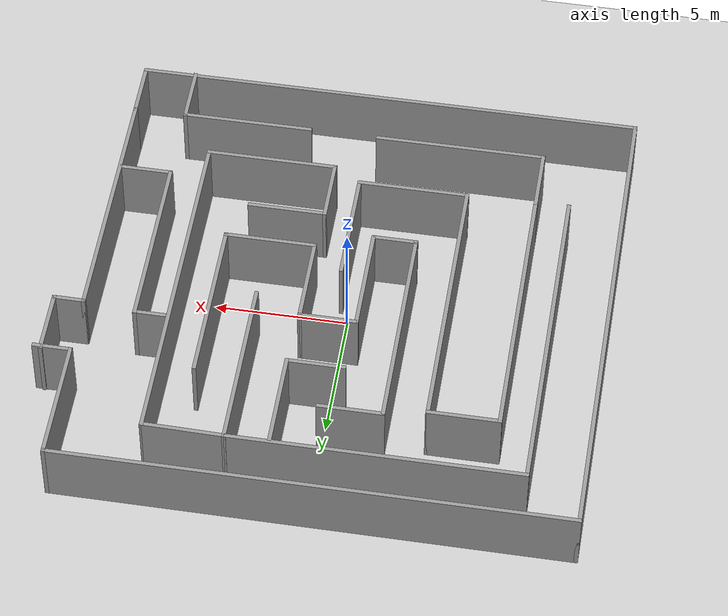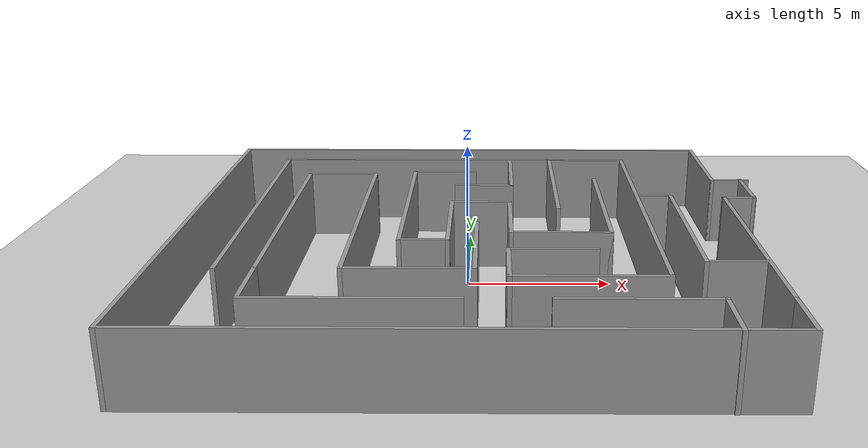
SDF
<sdf version="1.6">
 <world name="default">
  <light name="sun" type="directional">
   <pose>0 0 10 0 -0 0</pose>
   <diffuse>0.8 0.8 0.8 1</diffuse>
   <specular>0.2 0.2 0.2 1</specular>
   <attenuation>
    <range>1000</range>
    <constant>0.9</constant>
    <linear>0.01</linear>
    <quadratic>0.001</quadratic>
   </attenuation>
   <direction>-0.5 0.1 -0.9</direction>
  </light>
  <model name="ground_plane">
   <static>1</static>
   <link name="link">
    <collision name="collision">
     <geometry><plane><normal>0 0 1</normal><size>100 100</size></plane></geometry>
     <surface>
      <contact><collide_bitmask>65535</collide_bitmask></contact>
      <friction><ode><mu>100</mu><mu2>50</mu2></ode></friction>
     </surface>
    </collision>
    <visual name="visual">
     <cast_shadows>0</cast_shadows>
     <geometry><plane><normal>0 0 1</normal><size>100 100</size></plane></geometry>
     <material>
      <script><uri>file://media/materials/scripts/gazebo.material</uri><name>Gazebo/Grey</name></script>
     </material>
    </visual>
   </link>
  </model>
  <gravity>0 0 -9.8</gravity>
  <magnetic_field>6e-06 2.3e-05 -4.2e-05</magnetic_field>
  <atmosphere type="adiabatic"/>
  <physics name="default_physics" default="0" type="ode">
   <max_step_size>0.001</max_step_size>
   <real_time_factor>1</real_time_factor>
   <real_time_update_rate>1000</real_time_update_rate>
  </physics>
  <scene><ambient>0.4 0.4 0.4 1</ambient><background>0.7 0.7 0.7 1</background><shadows>1</shadows></scene>
  <spherical_coordinates>
   <surface_model>EARTH_WGS84</surface_model>
   <latitude_deg>0</latitude_deg>
   <longitude_deg>0</longitude_deg>
   <elevation>0</elevation>
   <heading_deg>0</heading_deg>
  </spherical_coordinates>
  <model name="sesmap1">
   <pose>0.541711 -0.00853 0 0 -0 0</pose>
   <link name="Wall_10">
    <collision name="Wall_10_Collision">
     <geometry><box><size>1.5 0.15 2.5</size></box></geometry>
     <pose>0 0 1.25 0 -0 0</pose>
    </collision>
    <visual name="Wall_10_Visual">
     <pose>0 0 1.25 0 -0 0</pose>
     <geometry><box><size>1.5 0.15 2.5</size></box></geometry>
     <material>
      <script><uri>file://media/materials/scripts/gazebo.material</uri><name>Gazebo/Grey</name></script>
      <ambient>1 1 1 1</ambient>
     </material>
     <meta><layer>0</layer></meta>
    </visual>
    <pose>9.55 4.72409 0 0 -0 0</pose>
   </link>
   <link name="Wall_14">
    <collision name="Wall_14_Collision">
     <geometry><box><size>1.25 0.15 2.5</size></box></geometry>
     <pose>0 0 1.25 0 -0 0</pose>
    </collision>
    <visual name="Wall_14_Visual">
     <pose>0 0 1.25 0 -0 0</pose>
     <geometry><box><size>1.25 0.15 2.5</size></box></geometry>
     <material>
      <script><uri>file://media/materials/scripts/gazebo.material</uri><name>Gazebo/Grey</name></script>
      <ambient>1 1 1 1</ambient>
     </material>
     <meta><layer>0</layer></meta>
    </visual>
    <pose>9.425 2.42409 0 0 -0 0</pose>
   </link>
   <link name="Wall_15">
    <collision name="Wall_15_Collision">
     <geometry><box><size>2.5 0.15 2.5</size></box></geometry>
     <pose>0 0 1.25 0 -0 0</pose>
    </collision>
    <visual name="Wall_15_Visual">
     <pose>0 0 1.25 0 -0 0</pose>
     <geometry><box><size>2.5 0.15 2.5</size></box></geometry>
     <material>
      <script><uri>file://media/materials/scripts/gazebo.material</uri><name>Gazebo/Grey</name></script>
      <ambient>1 1 1 1</ambient>
     </material>
     <meta><layer>0</layer></meta>
    </visual>
    <pose>9.975 3.59909 0 0 -0 1.5708</pose>
   </link>
   <link name="Wall_17">
    <collision name="Wall_17_Collision">
     <geometry><box><size>2.25 0.15 2.5</size></box></geometry>
     <pose>0 0 1.25 0 -0 0</pose>
    </collision>
    <visual name="Wall_17_Visual">
     <pose>0 0 1.25 0 -0 0</pose>
     <geometry><box><size>2.25 0.15 2.5</size></box></geometry>
     <material>
      <script><uri>file://media/materials/scripts/gazebo.material</uri><name>Gazebo/Grey</name></script>
      <ambient>1 1 1 1</ambient>
     </material>
     <meta><layer>0</layer></meta>
    </visual>
    <pose>-0.112329 1.81532 0 0 -0 0</pose>
   </link>
   <link name="Wall_18">
    <collision name="Wall_18_Collision">
     <geometry><box><size>3.5 0.15 2.5</size></box></geometry>
     <pose>0 0 1.25 0 -0 0</pose>
    </collision>
    <visual name="Wall_18_Visual">
     <pose>0 0 1.25 0 -0 0</pose>
     <geometry><box><size>3.5 0.15 2.5</size></box></geometry>
     <material>
      <script><uri>file://media/materials/scripts/gazebo.material</uri><name>Gazebo/Grey</name></script>
      <ambient>1 1 1 1</ambient>
     </material>
     <meta><layer>0</layer></meta>
    </visual>
    <pose>0.937671 0.140317 0 0 -0 -1.5708</pose>
   </link>
   <link name="Wall_19">
    <collision name="Wall_19_Collision">
     <geometry><box><size>3.5 0.15 2.5</size></box></geometry>
     <pose>0 0 1.25 0 -0 0</pose>
    </collision>
    <visual name="Wall_19_Visual">
     <pose>0 0 1.25 0 -0 0</pose>
     <geometry><box><size>3.5 0.15 2.5</size></box></geometry>
     <material>
      <script><uri>file://media/materials/scripts/gazebo.material</uri><name>Gazebo/Grey</name></script>
      <ambient>1 1 1 1</ambient>
     </material>
     <meta><layer>0</layer></meta>
    </visual>
    <pose>2.61267 -1.53468 0 0 -0 0</pose>
   </link>
   <link name="Wall_2">
    <collision name="Wall_2_Collision">
     <geometry><box><size>9.75 0.15 2.5</size></box></geometry>
     <pose>0 0 1.25 0 -0 0</pose>
    </collision>
    <visual name="Wall_2_Visual">
     <pose>0 0 1.25 0 -0 0</pose>
     <geometry><box><size>9.75 0.15 2.5</size></box></geometry>
     <material>
      <script><uri>file://media/materials/scripts/gazebo.material</uri><name>Gazebo/Grey</name></script>
      <ambient>1 1 1 1</ambient>
     </material>
     <meta><layer>0</layer></meta>
    </visual>
    <pose>8.875 -2.37591 0 0 -0 -1.5708</pose>
   </link>
   <link name="Wall_20">
    <collision name="Wall_20_Collision">
     <geometry><box><size>6.5 0.15 2.5</size></box></geometry>
     <pose>0 0 1.25 0 -0 0</pose>
    </collision>
    <visual name="Wall_20_Visual">
     <pose>0 0 1.25 0 -0 0</pose>
     <geometry><box><size>6.5 0.15 2.5</size></box></geometry>
     <material>
      <script><uri>file://media/materials/scripts/gazebo.material</uri><name>Gazebo/Grey</name></script>
      <ambient>1 1 1 1</ambient>
     </material>
     <meta><layer>0</layer></meta>
    </visual>
    <pose>4.28767 1.64032 0 0 -0 1.5708</pose>
   </link>
   <link name="Wall_22">
    <collision name="Wall_22_Collision">
     <geometry><box><size>4.5 0.15 2.5</size></box></geometry>
     <pose>0 0 1.25 0 -0 0</pose>
    </collision>
    <visual name="Wall_22_Visual">
     <pose>0 0 1.25 0 -0 0</pose>
     <geometry><box><size>4.5 0.15 2.5</size></box></geometry>
     <material>
      <script><uri>file://media/materials/scripts/gazebo.material</uri><name>Gazebo/Grey</name></script>
      <ambient>1 1 1 1</ambient>
     </material>
     <meta><layer>0</layer></meta>
    </visual>
    <pose>-0.226567 -2.69909 0 0 -0 -1.5708</pose>
   </link>
   <link name="Wall_23">
    <collision name="Wall_23_Collision">
     <geometry><box><size>4.25 0.15 2.5</size></box></geometry>
     <pose>0 0 1.25 0 -0 0</pose>
    </collision>
    <visual name="Wall_23_Visual">
     <pose>0 0 1.25 0 -0 0</pose>
     <geometry><box><size>4.25 0.15 2.5</size></box></geometry>
     <material>
      <script><uri>file://media/materials/scripts/gazebo.material</uri><name>Gazebo/Grey</name></script>
      <ambient>1 1 1 1</ambient>
     </material>
     <meta><layer>0</layer></meta>
    </visual>
    <pose>-2.27657 -4.87409 0 0 -0 3.14159</pose>
   </link>
   <link name="Wall_24">
    <collision name="Wall_24_Collision">
     <geometry><box><size>10.5 0.15 2.5</size></box></geometry>
     <pose>0 0 1.25 0 -0 0</pose>
    </collision>
    <visual name="Wall_24_Visual">
     <pose>0 0 1.25 0 -0 0</pose>
     <geometry><box><size>10.5 0.15 2.5</size></box></geometry>
     <material>
      <script><uri>file://media/materials/scripts/gazebo.material</uri><name>Gazebo/Grey</name></script>
      <ambient>1 1 1 1</ambient>
     </material>
     <meta><layer>0</layer></meta>
    </visual>
    <pose>-4.32657 0.300911 0 0 -0 1.5708</pose>
   </link>
   <link name="Wall_25">
    <collision name="Wall_25_Collision">
     <geometry><box><size>2.75 0.15 2.5</size></box></geometry>
     <pose>0 0 1.25 0 -0 0</pose>
    </collision>
    <visual name="Wall_25_Visual">
     <pose>0 0 1.25 0 -0 0</pose>
     <geometry><box><size>2.75 0.15 2.5</size></box></geometry>
     <material>
      <script><uri>file://media/materials/scripts/gazebo.material</uri><name>Gazebo/Grey</name></script>
      <ambient>1 1 1 1</ambient>
     </material>
     <meta><layer>0</layer></meta>
    </visual>
    <pose>-5.62657 5.47591 0 0 -0 3.14159</pose>
   </link>
   <link name="Wall_26">
    <collision name="Wall_26_Collision">
     <geometry><box><size>10.5 0.15 2.5</size></box></geometry>
     <pose>0 0 1.25 0 -0 0</pose>
    </collision>
    <visual name="Wall_26_Visual">
     <pose>0 0 1.25 0 -0 0</pose>
     <geometry><box><size>10.5 0.15 2.5</size></box></geometry>
     <material>
      <script><uri>file://media/materials/scripts/gazebo.material</uri><name>Gazebo/Grey</name></script>
      <ambient>1 1 1 1</ambient>
     </material>
     <meta><layer>0</layer></meta>
    </visual>
    <pose>-6.92657 0.300911 0 0 -0 -1.5708</pose>
   </link>
   <link name="Wall_27">
    <collision name="Wall_27_Collision">
     <geometry><box><size>2.5 0.15 2.5</size></box></geometry>
     <pose>0 0 1.25 0 -0 0</pose>
    </collision>
    <visual name="Wall_27_Visual">
     <pose>0 0 1.25 0 -0 0</pose>
     <geometry><box><size>2.5 0.15 2.5</size></box></geometry>
     <material>
      <script><uri>file://media/materials/scripts/gazebo.material</uri><name>Gazebo/Grey</name></script>
      <ambient>1 1 1 1</ambient>
     </material>
     <meta><layer>0</layer></meta>
    </visual>
    <pose>-6.92657 -6.04909 0 0 -0 -1.5708</pose>
   </link>
   <link name="Wall_38">
    <collision name="Wall_38_Collision">
     <geometry><box><size>13.25 0.15 2.5</size></box></geometry>
     <pose>0 0 1.25 0 -0 0</pose>
    </collision>
    <visual name="Wall_38_Visual">
     <pose>0 0 1.25 0 -0 0</pose>
     <geometry><box><size>13.25 0.15 2.5</size></box></geometry>
     <material>
      <script><uri>file://media/materials/scripts/gazebo.material</uri><name>Gazebo/Grey</name></script>
      <ambient>1 1 1 1</ambient>
     </material>
     <meta><layer>0</layer></meta>
    </visual>
    <pose>5.66873 1.06704 0 0 -0 -1.5708</pose>
   </link>
   <link name="Wall_39">
    <collision name="Wall_39_Collision">
     <geometry><box><size>5 0.15 2.5</size></box></geometry>
     <pose>0 0 1.25 0 -0 0</pose>
    </collision>
    <visual name="Wall_39_Visual">
     <pose>0 0 1.25 0 -0 0</pose>
     <geometry><box><size>5 0.15 2.5</size></box></geometry>
     <material>
      <script><uri>file://media/materials/scripts/gazebo.material</uri><name>Gazebo/Grey</name></script>
      <ambient>1 1 1 1</ambient>
     </material>
     <meta><layer>0</layer></meta>
    </visual>
    <pose>3.24373 -5.48296 0 0 -0 3.14159</pose>
   </link>
   <link name="Wall_4">
    <collision name="Wall_4_Collision">
     <geometry><box><size>2.25 0.15 2.5</size></box></geometry>
     <pose>0 0 1.25 0 -0 0</pose>
    </collision>
    <visual name="Wall_4_Visual">
     <pose>0 0 1.25 0 -0 0</pose>
     <geometry><box><size>2.25 0.15 2.5</size></box></geometry>
     <material>
      <script><uri>file://media/materials/scripts/gazebo.material</uri><name>Gazebo/Grey</name></script>
      <ambient>1 1 1 1</ambient>
     </material>
     <meta><layer>0</layer></meta>
    </visual>
    <pose>8.875 -8.22591 0 0 -0 -1.5708</pose>
   </link>
   <link name="Wall_40">
    <collision name="Wall_40_Collision">
     <geometry><box><size>2.5 0.15 2.5</size></box></geometry>
     <pose>0 0 1.25 0 -0 0</pose>
    </collision>
    <visual name="Wall_40_Visual">
     <pose>0 0 1.25 0 -0 0</pose>
     <geometry><box><size>2.5 0.15 2.5</size></box></geometry>
     <material>
      <script><uri>file://media/materials/scripts/gazebo.material</uri><name>Gazebo/Grey</name></script>
      <ambient>1 1 1 1</ambient>
     </material>
     <meta><layer>0</layer></meta>
    </visual>
    <pose>0.818734 -4.30796 0 0 -0 1.5708</pose>
   </link>
   <link name="Wall_41">
    <collision name="Wall_41_Collision">
     <geometry><box><size>3 0.15 2.5</size></box></geometry>
     <pose>0 0 1.25 0 -0 0</pose>
    </collision>
    <visual name="Wall_41_Visual">
     <pose>0 0 1.25 0 -0 0</pose>
     <geometry><box><size>3 0.15 2.5</size></box></geometry>
     <material>
      <script><uri>file://media/materials/scripts/gazebo.material</uri><name>Gazebo/Grey</name></script>
      <ambient>1 1 1 1</ambient>
     </material>
     <meta><layer>0</layer></meta>
    </visual>
    <pose>2.24373 -3.13296 0 0 -0 0</pose>
   </link>
   <link name="Wall_44">
    <collision name="Wall_44_Collision">
     <geometry><box><size>6.75 0.15 2.5</size></box></geometry>
     <pose>0 0 1.25 0 -0 0</pose>
    </collision>
    <visual name="Wall_44_Visual">
     <pose>0 0 1.25 0 -0 0</pose>
     <geometry><box><size>6.75 0.15 2.5</size></box></geometry>
     <material>
      <script><uri>file://media/materials/scripts/gazebo.material</uri><name>Gazebo/Grey</name></script>
      <ambient>1 1 1 1</ambient>
     </material>
     <meta><layer>0</layer></meta>
    </visual>
    <pose>2.67429 4.36671 0 0 -0 1.5708</pose>
   </link>
   <link name="Wall_45">
    <collision name="Wall_45_Collision">
     <geometry><box><size>11 0.15 2.5</size></box></geometry>
     <pose>0 0 1.25 0 -0 0</pose>
    </collision>
    <visual name="Wall_45_Visual">
     <pose>0 0 1.25 0 -0 0</pose>
     <geometry><box><size>11 0.15 2.5</size></box></geometry>
     <material>
      <script><uri>file://media/materials/scripts/gazebo.material</uri><name>Gazebo/Grey</name></script>
      <ambient>1 1 1 1</ambient>
     </material>
     <meta><layer>0</layer></meta>
    </visual>
    <pose>-2.7507 7.66671 0 0 -0 3.14159</pose>
   </link>
   <link name="Wall_46">
    <collision name="Wall_46_Collision">
     <geometry><box><size>12.75 0.15 2.5</size></box></geometry>
     <pose>0 0 1.25 0 -0 0</pose>
    </collision>
    <visual name="Wall_46_Visual">
     <pose>0 0 1.25 0 -0 0</pose>
     <geometry><box><size>12.75 0.15 2.5</size></box></geometry>
     <material>
      <script><uri>file://media/materials/scripts/gazebo.material</uri><name>Gazebo/Grey</name></script>
      <ambient>1 1 1 1</ambient>
     </material>
     <meta><layer>0</layer></meta>
    </visual>
    <pose>-8.1757 1.36671 0 0 -0 -1.5708</pose>
   </link>
   <link name="Wall_5">
    <collision name="Wall_5_Collision">
     <geometry><box><size>19.25 0.15 2.5</size></box></geometry>
     <pose>0 0 1.25 0 -0 0</pose>
    </collision>
    <visual name="Wall_5_Visual">
     <pose>0 0 1.25 0 -0 0</pose>
     <geometry><box><size>19.25 0.15 2.5</size></box></geometry>
     <material>
      <script><uri>file://media/materials/scripts/gazebo.material</uri><name>Gazebo/Grey</name></script>
      <ambient>1 1 1 1</ambient>
     </material>
     <meta><layer>0</layer></meta>
    </visual>
    <pose>-0.675 -9.27591 0 0 -0 3.14159</pose>
   </link>
   <link name="Wall_52">
    <collision name="Wall_52_Collision">
     <geometry><box><size>4.25 0.15 2.5</size></box></geometry>
     <pose>0 0 1.25 0 -0 0</pose>
    </collision>
    <visual name="Wall_52_Visual">
     <pose>0 0 1.25 0 -0 0</pose>
     <geometry><box><size>4.25 0.15 2.5</size></box></geometry>
     <material>
      <script><uri>file://media/materials/scripts/gazebo.material</uri><name>Gazebo/Grey</name></script>
      <ambient>1 1 1 1</ambient>
     </material>
     <meta><layer>0</layer></meta>
    </visual>
    <pose>-1.16233 -0.234683 0 0 -0 -1.5708</pose>
   </link>
   <link name="Wall_53">
    <collision name="Wall_53_Collision">
     <geometry><box><size>1.75 0.15 2.5</size></box></geometry>
     <pose>0 0 1.25 0 -0 0</pose>
    </collision>
    <visual name="Wall_53_Visual">
     <pose>0 0 1.25 0 -0 0</pose>
     <geometry><box><size>1.75 0.15 2.5</size></box></geometry>
     <material>
      <script><uri>file://media/materials/scripts/gazebo.material</uri><name>Gazebo/Grey</name></script>
      <ambient>1 1 1 1</ambient>
     </material>
     <meta><layer>0</layer></meta>
    </visual>
    <pose>-1.96233 -2.28468 0 0 -0 3.14159</pose>
   </link>
   <link name="Wall_54">
    <collision name="Wall_54_Collision">
     <geometry><box><size>8.25 0.15 2.5</size></box></geometry>
     <pose>0 0 1.25 0 -0 0</pose>
    </collision>
    <visual name="Wall_54_Visual">
     <pose>0 0 1.25 0 -0 0</pose>
     <geometry><box><size>8.25 0.15 2.5</size></box></geometry>
     <material>
      <script><uri>file://media/materials/scripts/gazebo.material</uri><name>Gazebo/Grey</name></script>
      <ambient>1 1 1 1</ambient>
     </material>
     <meta><layer>0</layer></meta>
    </visual>
    <pose>-2.76233 1.76532 0 0 -0 1.5708</pose>
   </link>
   <link name="Wall_55">
    <collision name="Wall_55_Collision">
     <geometry><box><size>2.5 0.15 2.5</size></box></geometry>
     <pose>0 0 1.25 0 -0 0</pose>
    </collision>
    <visual name="Wall_55_Visual">
     <pose>0 0 1.25 0 -0 0</pose>
     <geometry><box><size>2.5 0.15 2.5</size></box></geometry>
     <material>
      <script><uri>file://media/materials/scripts/gazebo.material</uri><name>Gazebo/Grey</name></script>
      <ambient>1 1 1 1</ambient>
     </material>
     <meta><layer>0</layer></meta>
    </visual>
    <pose>-1.58733 5.81532 0 0 -0 0</pose>
   </link>
   <link name="Wall_58">
    <collision name="Wall_58_Collision">
     <geometry><box><size>2.25 0.15 2.5</size></box></geometry>
     <pose>0 0 1.25 0 -0 0</pose>
    </collision>
    <visual name="Wall_58_Visual">
     <pose>0 0 1.25 0 -0 0</pose>
     <geometry><box><size>2.25 0.15 2.5</size></box></geometry>
     <material>
      <script><uri>file://media/materials/scripts/gazebo.material</uri><name>Gazebo/Grey</name></script>
      <ambient>1 1 1 1</ambient>
     </material>
     <meta><layer>0</layer></meta>
    </visual>
    <pose>-0.006193 3.96557 0 0 -0 0</pose>
   </link>
   <link name="Wall_59">
    <collision name="Wall_59_Collision">
     <geometry><box><size>3.75 0.15 2.5</size></box></geometry>
     <pose>0 0 1.25 0 -0 0</pose>
    </collision>
    <visual name="Wall_59_Visual">
     <pose>0 0 1.25 0 -0 0</pose>
     <geometry><box><size>3.75 0.15 2.5</size></box></geometry>
     <material>
      <script><uri>file://media/materials/scripts/gazebo.material</uri><name>Gazebo/Grey</name></script>
      <ambient>1 1 1 1</ambient>
     </material>
     <meta><layer>0</layer></meta>
    </visual>
    <pose>1.04381 5.76557 0 0 -0 1.5708</pose>
   </link>
   <link name="Wall_6">
    <collision name="Wall_6_Collision">
     <geometry><box><size>18.75 0.15 2.5</size></box></geometry>
     <pose>0 0 1.25 0 -0 0</pose>
    </collision>
    <visual name="Wall_6_Visual">
     <pose>0 0 1.25 0 -0 0</pose>
     <geometry><box><size>18.75 0.15 2.5</size></box></geometry>
     <material>
      <script><uri>file://media/materials/scripts/gazebo.material</uri><name>Gazebo/Grey</name></script>
      <ambient>1 1 1 1</ambient>
     </material>
     <meta><layer>0</layer></meta>
    </visual>
    <pose>-10.225 0.024087 0 0 -0 1.5708</pose>
   </link>
   <link name="Wall_63">
    <collision name="Wall_63_Collision">
     <geometry><box><size>3.14485 0.15 2.5</size></box></geometry>
     <pose>0 0 1.25 0 -0 0</pose>
    </collision>
    <visual name="Wall_63_Visual">
     <pose>0 0 1.25 0 -0 0</pose>
     <geometry><box><size>3.14485 0.15 2.5</size></box></geometry>
     <material>
      <script><uri>file://media/materials/scripts/gazebo.material</uri><name>Gazebo/Grey</name></script>
      <ambient>1 1 1 1</ambient>
     </material>
     <meta><layer>0</layer></meta>
    </visual>
    <pose>4.17152 7.64187 0 0 -0 3.12501</pose>
   </link>
   <link name="Wall_66">
    <collision name="Wall_66_Collision">
     <geometry><box><size>6.5 0.15 2.5</size></box></geometry>
     <pose>0 0 1.25 0 -0 0</pose>
    </collision>
    <visual name="Wall_66_Visual">
     <pose>0 0 1.25 0 -0 0</pose>
     <geometry><box><size>6.5 0.15 2.5</size></box></geometry>
     <material>
      <script><uri>file://media/materials/scripts/gazebo.material</uri><name>Gazebo/Grey</name></script>
      <ambient>1 1 1 1</ambient>
     </material>
     <meta><layer>0</layer></meta>
    </visual>
    <pose>-3.75157 -7.22409 0 0 -0 0</pose>
   </link>
   <link name="Wall_68">
    <collision name="Wall_68_Collision">
     <geometry><box><size>5 0.15 2.5</size></box></geometry>
     <pose>0 0 1.25 0 -0 0</pose>
    </collision>
    <visual name="Wall_68_Visual">
     <pose>0 0 1.25 0 -0 0</pose>
     <geometry><box><size>5 0.15 2.5</size></box></geometry>
     <material>
      <script><uri>file://media/materials/scripts/gazebo.material</uri><name>Gazebo/Grey</name></script>
      <ambient>1 1 1 1</ambient>
     </material>
     <meta><layer>0</layer></meta>
    </visual>
    <pose>4.49843 -7.22409 0 0 -0 3.14159</pose>
   </link>
   <link name="Wall_72">
    <collision name="Wall_72_Collision">
     <geometry><box><size>1.25 0.15 2.5</size></box></geometry>
     <pose>0 0 1.25 0 -0 0</pose>
    </collision>
    <visual name="Wall_72_Visual">
     <pose>0 0 1.25 0 -0 0</pose>
     <geometry><box><size>1.25 0.15 2.5</size></box></geometry>
     <material>
      <script><uri>file://media/materials/scripts/gazebo.material</uri><name>Gazebo/Grey</name></script>
      <ambient>1 1 1 1</ambient>
     </material>
     <meta><layer>0</layer></meta>
    </visual>
    <pose>6.37343 2.62591 0 0 -0 3.14159</pose>
   </link>
   <link name="Wall_74">
    <collision name="Wall_74_Collision">
     <geometry><box><size>7 0.15 2.5</size></box></geometry>
     <pose>0 0 1.25 0 -0 0</pose>
    </collision>
    <visual name="Wall_74_Visual">
     <pose>0 0 1.25 0 -0 0</pose>
     <geometry><box><size>7 0.15 2.5</size></box></geometry>
     <material>
      <script><uri>file://media/materials/scripts/gazebo.material</uri><name>Gazebo/Grey</name></script>
      <ambient>1 1 1 1</ambient>
     </material>
     <meta><layer>0</layer></meta>
    </visual>
    <pose>6.92343 -0.799089 0 0 -0 -1.5708</pose>
   </link>
   <link name="Wall_75">
    <collision name="Wall_75_Collision">
     <geometry><box><size>2 0.15 2.5</size></box></geometry>
     <pose>0 0 1.25 0 -0 0</pose>
    </collision>
    <visual name="Wall_75_Visual">
     <pose>0 0 1.25 0 -0 0</pose>
     <geometry><box><size>2 0.15 2.5</size></box></geometry>
     <material>
      <script><uri>file://media/materials/scripts/gazebo.material</uri><name>Gazebo/Grey</name></script>
      <ambient>1 1 1 1</ambient>
     </material>
     <meta><layer>0</layer></meta>
    </visual>
    <pose>7.84843 -4.22409 0 0 -0 0</pose>
   </link>
   <link name="Wall_77">
    <collision name="Wall_77_Collision">
     <geometry><box><size>2.25 0.15 2.5</size></box></geometry>
     <pose>0 0 1.25 0 -0 0</pose>
    </collision>
    <visual name="Wall_77_Visual">
     <pose>0 0 1.25 0 -0 0</pose>
     <geometry><box><size>2.25 0.15 2.5</size></box></geometry>
     <material>
      <script><uri>file://media/materials/scripts/gazebo.material</uri><name>Gazebo/Grey</name></script>
      <ambient>1 1 1 1</ambient>
     </material>
     <meta><layer>0</layer></meta>
    </visual>
    <pose>6.92343 -8.27409 0 0 -0 -1.5708</pose>
   </link>
   <link name="Wall_8">
    <collision name="Wall_8_Collision">
     <geometry><box><size>19.25 0.15 2.5</size></box></geometry>
     <pose>0 0 1.25 0 -0 0</pose>
    </collision>
    <visual name="Wall_8_Visual">
     <pose>0 0 1.25 0 -0 0</pose>
     <geometry><box><size>19.25 0.15 2.5</size></box></geometry>
     <material>
      <script><uri>file://media/materials/scripts/gazebo.material</uri><name>Gazebo/Grey</name></script>
      <ambient>1 1 1 1</ambient>
     </material>
     <meta><layer>0</layer></meta>
    </visual>
    <pose>-0.675 9.32409 0 0 -0 0</pose>
   </link>
   <link name="Wall_9">
    <collision name="Wall_9_Collision">
     <geometry><box><size>4.75 0.15 2.5</size></box></geometry>
     <pose>0 0 1.25 0 -0 0</pose>
    </collision>
    <visual name="Wall_9_Visual">
     <pose>0 0 1.25 0 -0 0</pose>
     <geometry><box><size>4.75 0.15 2.5</size></box></geometry>
     <material>
      <script><uri>file://media/materials/scripts/gazebo.material</uri><name>Gazebo/Grey</name></script>
      <ambient>1 1 1 1</ambient>
     </material>
     <meta><layer>0</layer></meta>
    </visual>
    <pose>8.875 7.02409 0 0 -0 -1.5708</pose>
   </link>
   <static>1</static>
  </model>
 </world>
</sdf>
